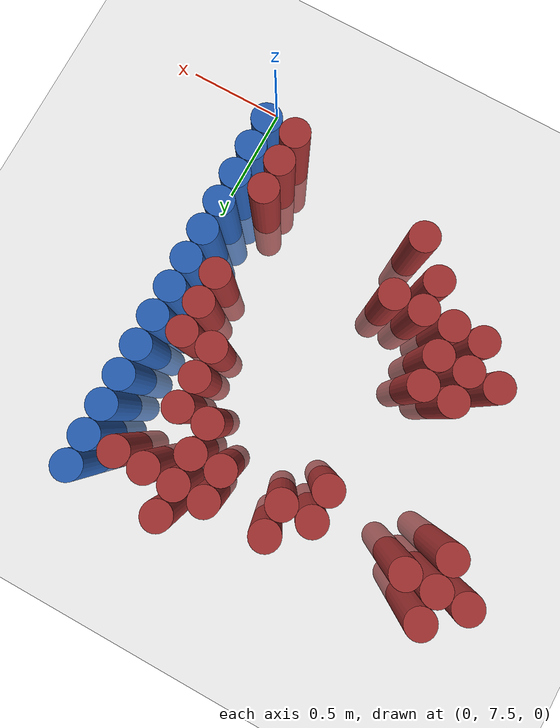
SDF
<sdf version="1.6">
 <world name="default">
  <model name="ground_plane">
   <static>1</static>
   <link name="link">
    <collision name="collision">
     <geometry><plane><normal>0 0 1</normal><size>100 100</size></plane></geometry>
     <surface><friction><ode><mu>100</mu><mu2>50</mu2></ode></friction></surface>
    </collision>
    <visual name="visual">
     <cast_shadows>0</cast_shadows>
     <geometry><plane><normal>0 0 1</normal><size>100 100</size></plane></geometry>
     <material>
      <script><uri>file://media/materials/scripts/gazebo.material</uri><name>Gazebo/Grey</name></script>
     </material>
    </visual>
   </link>
  </model>
  <model name="unit_cylinder_218">
   <static>1</static>
   <pose>-1.875000 9.225000 0.000000 0.000000 0.000000 0.000000</pose>
   <link name="link">
    <inertial>
     <mass>1</mass>
     <inertia><ixx>0.145833</ixx><ixy>0</ixy><ixz>0</ixz><iyy>0.145833</iyy><iyz>0</iyz><izz>0.125</izz></inertia>
    </inertial>
    <collision name="collision">
     <geometry><cylinder><radius>0.075000</radius><length>1</length></cylinder></geometry>
    </collision>
    <visual name="visual">
     <geometry><cylinder><radius>0.075000</radius><length>1</length></cylinder></geometry>
     <material>
      <ambient>0.648000 0.192000 0.192000 1</ambient>
      <diffuse>0.648000 0.192000 0.192000 1</diffuse>
     </material>
     <material>
      <script><name>Gazebo/Grey</name><uri>file://media/materials/scripts/gazebo.material</uri></script>
     </material>
    </visual>
   </link>
  </model>
  <model name="unit_cylinder_226">
   <static>1</static>
   <pose>-1.725000 9.075000 0.000000 0.000000 0.000000 0.000000</pose>
   <link name="link">
    <inertial>
     <mass>1</mass>
     <inertia><ixx>0.145833</ixx><ixy>0</ixy><ixz>0</ixz><iyy>0.145833</iyy><iyz>0</iyz><izz>0.125</izz></inertia>
    </inertial>
    <collision name="collision">
     <geometry><cylinder><radius>0.075000</radius><length>1</length></cylinder></geometry>
    </collision>
    <visual name="visual">
     <geometry><cylinder><radius>0.075000</radius><length>1</length></cylinder></geometry>
     <material>
      <ambient>0.648000 0.192000 0.192000 1</ambient>
      <diffuse>0.648000 0.192000 0.192000 1</diffuse>
     </material>
     <material>
      <script><name>Gazebo/Grey</name><uri>file://media/materials/scripts/gazebo.material</uri></script>
     </material>
    </visual>
   </link>
  </model>
  <model name="unit_cylinder_227">
   <static>1</static>
   <pose>-1.725000 9.225000 0.000000 0.000000 0.000000 0.000000</pose>
   <link name="link">
    <inertial>
     <mass>1</mass>
     <inertia><ixx>0.145833</ixx><ixy>0</ixy><ixz>0</ixz><iyy>0.145833</iyy><iyz>0</iyz><izz>0.125</izz></inertia>
    </inertial>
    <collision name="collision">
     <geometry><cylinder><radius>0.075000</radius><length>1</length></cylinder></geometry>
    </collision>
    <visual name="visual">
     <geometry><cylinder><radius>0.075000</radius><length>1</length></cylinder></geometry>
     <material>
      <ambient>0.648000 0.192000 0.192000 1</ambient>
      <diffuse>0.648000 0.192000 0.192000 1</diffuse>
     </material>
     <material>
      <script><name>Gazebo/Grey</name><uri>file://media/materials/scripts/gazebo.material</uri></script>
     </material>
    </visual>
   </link>
  </model>
  <model name="unit_cylinder_228">
   <static>1</static>
   <pose>-1.725000 9.375000 0.000000 0.000000 0.000000 0.000000</pose>
   <link name="link">
    <inertial>
     <mass>1</mass>
     <inertia><ixx>0.145833</ixx><ixy>0</ixy><ixz>0</ixz><iyy>0.145833</iyy><iyz>0</iyz><izz>0.125</izz></inertia>
    </inertial>
    <collision name="collision">
     <geometry><cylinder><radius>0.075000</radius><length>1</length></cylinder></geometry>
    </collision>
    <visual name="visual">
     <geometry><cylinder><radius>0.075000</radius><length>1</length></cylinder></geometry>
     <material>
      <ambient>0.648000 0.192000 0.192000 1</ambient>
      <diffuse>0.648000 0.192000 0.192000 1</diffuse>
     </material>
     <material>
      <script><name>Gazebo/Grey</name><uri>file://media/materials/scripts/gazebo.material</uri></script>
     </material>
    </visual>
   </link>
  </model>
  <model name="unit_cylinder_236">
   <static>1</static>
   <pose>-1.575000 8.325000 0.000000 0.000000 0.000000 0.000000</pose>
   <link name="link">
    <inertial>
     <mass>1</mass>
     <inertia><ixx>0.145833</ixx><ixy>0</ixy><ixz>0</ixz><iyy>0.145833</iyy><iyz>0</iyz><izz>0.125</izz></inertia>
    </inertial>
    <collision name="collision">
     <geometry><cylinder><radius>0.075000</radius><length>1</length></cylinder></geometry>
    </collision>
    <visual name="visual">
     <geometry><cylinder><radius>0.075000</radius><length>1</length></cylinder></geometry>
     <material>
      <ambient>0.648000 0.192000 0.192000 1</ambient>
      <diffuse>0.648000 0.192000 0.192000 1</diffuse>
     </material>
     <material>
      <script><name>Gazebo/Grey</name><uri>file://media/materials/scripts/gazebo.material</uri></script>
     </material>
    </visual>
   </link>
  </model>
  <model name="unit_cylinder_237">
   <static>1</static>
   <pose>-1.575000 9.225000 0.000000 0.000000 0.000000 0.000000</pose>
   <link name="link">
    <inertial>
     <mass>1</mass>
     <inertia><ixx>0.145833</ixx><ixy>0</ixy><ixz>0</ixz><iyy>0.145833</iyy><iyz>0</iyz><izz>0.125</izz></inertia>
    </inertial>
    <collision name="collision">
     <geometry><cylinder><radius>0.075000</radius><length>1</length></cylinder></geometry>
    </collision>
    <visual name="visual">
     <geometry><cylinder><radius>0.075000</radius><length>1</length></cylinder></geometry>
     <material>
      <ambient>0.648000 0.192000 0.192000 1</ambient>
      <diffuse>0.648000 0.192000 0.192000 1</diffuse>
     </material>
     <material>
      <script><name>Gazebo/Grey</name><uri>file://media/materials/scripts/gazebo.material</uri></script>
     </material>
    </visual>
   </link>
  </model>
  <model name="unit_cylinder_245">
   <static>1</static>
   <pose>-1.425000 8.175000 0.000000 0.000000 0.000000 0.000000</pose>
   <link name="link">
    <inertial>
     <mass>1</mass>
     <inertia><ixx>0.145833</ixx><ixy>0</ixy><ixz>0</ixz><iyy>0.145833</iyy><iyz>0</iyz><izz>0.125</izz></inertia>
    </inertial>
    <collision name="collision">
     <geometry><cylinder><radius>0.075000</radius><length>1</length></cylinder></geometry>
    </collision>
    <visual name="visual">
     <geometry><cylinder><radius>0.075000</radius><length>1</length></cylinder></geometry>
     <material>
      <ambient>0.648000 0.192000 0.192000 1</ambient>
      <diffuse>0.648000 0.192000 0.192000 1</diffuse>
     </material>
     <material>
      <script><name>Gazebo/Grey</name><uri>file://media/materials/scripts/gazebo.material</uri></script>
     </material>
    </visual>
   </link>
  </model>
  <model name="unit_cylinder_246">
   <static>1</static>
   <pose>-1.425000 8.325000 0.000000 0.000000 0.000000 0.000000</pose>
   <link name="link">
    <inertial>
     <mass>1</mass>
     <inertia><ixx>0.145833</ixx><ixy>0</ixy><ixz>0</ixz><iyy>0.145833</iyy><iyz>0</iyz><izz>0.125</izz></inertia>
    </inertial>
    <collision name="collision">
     <geometry><cylinder><radius>0.075000</radius><length>1</length></cylinder></geometry>
    </collision>
    <visual name="visual">
     <geometry><cylinder><radius>0.075000</radius><length>1</length></cylinder></geometry>
     <material>
      <ambient>0.648000 0.192000 0.192000 1</ambient>
      <diffuse>0.648000 0.192000 0.192000 1</diffuse>
     </material>
     <material>
      <script><name>Gazebo/Grey</name><uri>file://media/materials/scripts/gazebo.material</uri></script>
     </material>
    </visual>
   </link>
  </model>
  <model name="unit_cylinder_247">
   <static>1</static>
   <pose>-1.425000 8.475000 0.000000 0.000000 0.000000 0.000000</pose>
   <link name="link">
    <inertial>
     <mass>1</mass>
     <inertia><ixx>0.145833</ixx><ixy>0</ixy><ixz>0</ixz><iyy>0.145833</iyy><iyz>0</iyz><izz>0.125</izz></inertia>
    </inertial>
    <collision name="collision">
     <geometry><cylinder><radius>0.075000</radius><length>1</length></cylinder></geometry>
    </collision>
    <visual name="visual">
     <geometry><cylinder><radius>0.075000</radius><length>1</length></cylinder></geometry>
     <material>
      <ambient>0.648000 0.192000 0.192000 1</ambient>
      <diffuse>0.648000 0.192000 0.192000 1</diffuse>
     </material>
     <material>
      <script><name>Gazebo/Grey</name><uri>file://media/materials/scripts/gazebo.material</uri></script>
     </material>
    </visual>
   </link>
  </model>
  <model name="unit_cylinder_253">
   <static>1</static>
   <pose>-1.275000 8.175000 0.000000 0.000000 0.000000 0.000000</pose>
   <link name="link">
    <inertial>
     <mass>1</mass>
     <inertia><ixx>0.145833</ixx><ixy>0</ixy><ixz>0</ixz><iyy>0.145833</iyy><iyz>0</iyz><izz>0.125</izz></inertia>
    </inertial>
    <collision name="collision">
     <geometry><cylinder><radius>0.075000</radius><length>1</length></cylinder></geometry>
    </collision>
    <visual name="visual">
     <geometry><cylinder><radius>0.075000</radius><length>1</length></cylinder></geometry>
     <material>
      <ambient>0.648000 0.192000 0.192000 1</ambient>
      <diffuse>0.648000 0.192000 0.192000 1</diffuse>
     </material>
     <material>
      <script><name>Gazebo/Grey</name><uri>file://media/materials/scripts/gazebo.material</uri></script>
     </material>
    </visual>
   </link>
  </model>
  <model name="unit_cylinder_254">
   <static>1</static>
   <pose>-1.275000 8.325000 0.000000 0.000000 0.000000 0.000000</pose>
   <link name="link">
    <inertial>
     <mass>1</mass>
     <inertia><ixx>0.145833</ixx><ixy>0</ixy><ixz>0</ixz><iyy>0.145833</iyy><iyz>0</iyz><izz>0.125</izz></inertia>
    </inertial>
    <collision name="collision">
     <geometry><cylinder><radius>0.075000</radius><length>1</length></cylinder></geometry>
    </collision>
    <visual name="visual">
     <geometry><cylinder><radius>0.075000</radius><length>1</length></cylinder></geometry>
     <material>
      <ambient>0.648000 0.192000 0.192000 1</ambient>
      <diffuse>0.648000 0.192000 0.192000 1</diffuse>
     </material>
     <material>
      <script><name>Gazebo/Grey</name><uri>file://media/materials/scripts/gazebo.material</uri></script>
     </material>
    </visual>
   </link>
  </model>
  <model name="unit_cylinder_255">
   <static>1</static>
   <pose>-1.275000 8.475000 0.000000 0.000000 0.000000 0.000000</pose>
   <link name="link">
    <inertial>
     <mass>1</mass>
     <inertia><ixx>0.145833</ixx><ixy>0</ixy><ixz>0</ixz><iyy>0.145833</iyy><iyz>0</iyz><izz>0.125</izz></inertia>
    </inertial>
    <collision name="collision">
     <geometry><cylinder><radius>0.075000</radius><length>1</length></cylinder></geometry>
    </collision>
    <visual name="visual">
     <geometry><cylinder><radius>0.075000</radius><length>1</length></cylinder></geometry>
     <material>
      <ambient>0.648000 0.192000 0.192000 1</ambient>
      <diffuse>0.648000 0.192000 0.192000 1</diffuse>
     </material>
     <material>
      <script><name>Gazebo/Grey</name><uri>file://media/materials/scripts/gazebo.material</uri></script>
     </material>
    </visual>
   </link>
  </model>
  <model name="unit_cylinder_263">
   <static>1</static>
   <pose>-1.125000 8.025000 0.000000 0.000000 0.000000 0.000000</pose>
   <link name="link">
    <inertial>
     <mass>1</mass>
     <inertia><ixx>0.145833</ixx><ixy>0</ixy><ixz>0</ixz><iyy>0.145833</iyy><iyz>0</iyz><izz>0.125</izz></inertia>
    </inertial>
    <collision name="collision">
     <geometry><cylinder><radius>0.075000</radius><length>1</length></cylinder></geometry>
    </collision>
    <visual name="visual">
     <geometry><cylinder><radius>0.075000</radius><length>1</length></cylinder></geometry>
     <material>
      <ambient>0.648000 0.192000 0.192000 1</ambient>
      <diffuse>0.648000 0.192000 0.192000 1</diffuse>
     </material>
     <material>
      <script><name>Gazebo/Grey</name><uri>file://media/materials/scripts/gazebo.material</uri></script>
     </material>
    </visual>
   </link>
  </model>
  <model name="unit_cylinder_264">
   <static>1</static>
   <pose>-1.125000 8.175000 0.000000 0.000000 0.000000 0.000000</pose>
   <link name="link">
    <inertial>
     <mass>1</mass>
     <inertia><ixx>0.145833</ixx><ixy>0</ixy><ixz>0</ixz><iyy>0.145833</iyy><iyz>0</iyz><izz>0.125</izz></inertia>
    </inertial>
    <collision name="collision">
     <geometry><cylinder><radius>0.075000</radius><length>1</length></cylinder></geometry>
    </collision>
    <visual name="visual">
     <geometry><cylinder><radius>0.075000</radius><length>1</length></cylinder></geometry>
     <material>
      <ambient>0.648000 0.192000 0.192000 1</ambient>
      <diffuse>0.648000 0.192000 0.192000 1</diffuse>
     </material>
     <material>
      <script><name>Gazebo/Grey</name><uri>file://media/materials/scripts/gazebo.material</uri></script>
     </material>
    </visual>
   </link>
  </model>
  <model name="unit_cylinder_265">
   <static>1</static>
   <pose>-1.125000 9.075000 0.000000 0.000000 0.000000 0.000000</pose>
   <link name="link">
    <inertial>
     <mass>1</mass>
     <inertia><ixx>0.145833</ixx><ixy>0</ixy><ixz>0</ixz><iyy>0.145833</iyy><iyz>0</iyz><izz>0.125</izz></inertia>
    </inertial>
    <collision name="collision">
     <geometry><cylinder><radius>0.075000</radius><length>1</length></cylinder></geometry>
    </collision>
    <visual name="visual">
     <geometry><cylinder><radius>0.075000</radius><length>1</length></cylinder></geometry>
     <material>
      <ambient>0.648000 0.192000 0.192000 1</ambient>
      <diffuse>0.648000 0.192000 0.192000 1</diffuse>
     </material>
     <material>
      <script><name>Gazebo/Grey</name><uri>file://media/materials/scripts/gazebo.material</uri></script>
     </material>
    </visual>
   </link>
  </model>
  <model name="unit_cylinder_266">
   <static>1</static>
   <pose>-1.125000 9.225000 0.000000 0.000000 0.000000 0.000000</pose>
   <link name="link">
    <inertial>
     <mass>1</mass>
     <inertia><ixx>0.145833</ixx><ixy>0</ixy><ixz>0</ixz><iyy>0.145833</iyy><iyz>0</iyz><izz>0.125</izz></inertia>
    </inertial>
    <collision name="collision">
     <geometry><cylinder><radius>0.075000</radius><length>1</length></cylinder></geometry>
    </collision>
    <visual name="visual">
     <geometry><cylinder><radius>0.075000</radius><length>1</length></cylinder></geometry>
     <material>
      <ambient>0.648000 0.192000 0.192000 1</ambient>
      <diffuse>0.648000 0.192000 0.192000 1</diffuse>
     </material>
     <material>
      <script><name>Gazebo/Grey</name><uri>file://media/materials/scripts/gazebo.material</uri></script>
     </material>
    </visual>
   </link>
  </model>
  <model name="unit_cylinder_270">
   <static>1</static>
   <pose>-0.975000 7.875000 0.000000 0.000000 0.000000 0.000000</pose>
   <link name="link">
    <inertial>
     <mass>1</mass>
     <inertia><ixx>0.145833</ixx><ixy>0</ixy><ixz>0</ixz><iyy>0.145833</iyy><iyz>0</iyz><izz>0.125</izz></inertia>
    </inertial>
    <collision name="collision">
     <geometry><cylinder><radius>0.075000</radius><length>1</length></cylinder></geometry>
    </collision>
    <visual name="visual">
     <geometry><cylinder><radius>0.075000</radius><length>1</length></cylinder></geometry>
     <material>
      <ambient>0.648000 0.192000 0.192000 1</ambient>
      <diffuse>0.648000 0.192000 0.192000 1</diffuse>
     </material>
     <material>
      <script><name>Gazebo/Grey</name><uri>file://media/materials/scripts/gazebo.material</uri></script>
     </material>
    </visual>
   </link>
  </model>
  <model name="unit_cylinder_271">
   <static>1</static>
   <pose>-0.975000 8.175000 0.000000 0.000000 0.000000 0.000000</pose>
   <link name="link">
    <inertial>
     <mass>1</mass>
     <inertia><ixx>0.145833</ixx><ixy>0</ixy><ixz>0</ixz><iyy>0.145833</iyy><iyz>0</iyz><izz>0.125</izz></inertia>
    </inertial>
    <collision name="collision">
     <geometry><cylinder><radius>0.075000</radius><length>1</length></cylinder></geometry>
    </collision>
    <visual name="visual">
     <geometry><cylinder><radius>0.075000</radius><length>1</length></cylinder></geometry>
     <material>
      <ambient>0.648000 0.192000 0.192000 1</ambient>
      <diffuse>0.648000 0.192000 0.192000 1</diffuse>
     </material>
     <material>
      <script><name>Gazebo/Grey</name><uri>file://media/materials/scripts/gazebo.material</uri></script>
     </material>
    </visual>
   </link>
  </model>
  <model name="unit_cylinder_272">
   <static>1</static>
   <pose>-0.975000 9.225000 0.000000 0.000000 0.000000 0.000000</pose>
   <link name="link">
    <inertial>
     <mass>1</mass>
     <inertia><ixx>0.145833</ixx><ixy>0</ixy><ixz>0</ixz><iyy>0.145833</iyy><iyz>0</iyz><izz>0.125</izz></inertia>
    </inertial>
    <collision name="collision">
     <geometry><cylinder><radius>0.075000</radius><length>1</length></cylinder></geometry>
    </collision>
    <visual name="visual">
     <geometry><cylinder><radius>0.075000</radius><length>1</length></cylinder></geometry>
     <material>
      <ambient>0.648000 0.192000 0.192000 1</ambient>
      <diffuse>0.648000 0.192000 0.192000 1</diffuse>
     </material>
     <material>
      <script><name>Gazebo/Grey</name><uri>file://media/materials/scripts/gazebo.material</uri></script>
     </material>
    </visual>
   </link>
  </model>
  <model name="unit_cylinder_273">
   <static>1</static>
   <pose>-0.975000 9.375000 0.000000 0.000000 0.000000 0.000000</pose>
   <link name="link">
    <inertial>
     <mass>1</mass>
     <inertia><ixx>0.145833</ixx><ixy>0</ixy><ixz>0</ixz><iyy>0.145833</iyy><iyz>0</iyz><izz>0.125</izz></inertia>
    </inertial>
    <collision name="collision">
     <geometry><cylinder><radius>0.075000</radius><length>1</length></cylinder></geometry>
    </collision>
    <visual name="visual">
     <geometry><cylinder><radius>0.075000</radius><length>1</length></cylinder></geometry>
     <material>
      <ambient>0.648000 0.192000 0.192000 1</ambient>
      <diffuse>0.648000 0.192000 0.192000 1</diffuse>
     </material>
     <material>
      <script><name>Gazebo/Grey</name><uri>file://media/materials/scripts/gazebo.material</uri></script>
     </material>
    </visual>
   </link>
  </model>
  <model name="unit_cylinder_289">
   <static>1</static>
   <pose>-0.675000 9.225000 0.000000 0.000000 0.000000 0.000000</pose>
   <link name="link">
    <inertial>
     <mass>1</mass>
     <inertia><ixx>0.145833</ixx><ixy>0</ixy><ixz>0</ixz><iyy>0.145833</iyy><iyz>0</iyz><izz>0.125</izz></inertia>
    </inertial>
    <collision name="collision">
     <geometry><cylinder><radius>0.075000</radius><length>1</length></cylinder></geometry>
    </collision>
    <visual name="visual">
     <geometry><cylinder><radius>0.075000</radius><length>1</length></cylinder></geometry>
     <material>
      <ambient>0.648000 0.192000 0.192000 1</ambient>
      <diffuse>0.648000 0.192000 0.192000 1</diffuse>
     </material>
     <material>
      <script><name>Gazebo/Grey</name><uri>file://media/materials/scripts/gazebo.material</uri></script>
     </material>
    </visual>
   </link>
  </model>
  <model name="unit_cylinder_290">
   <static>1</static>
   <pose>-0.675000 9.375000 0.000000 0.000000 0.000000 0.000000</pose>
   <link name="link">
    <inertial>
     <mass>1</mass>
     <inertia><ixx>0.145833</ixx><ixy>0</ixy><ixz>0</ixz><iyy>0.145833</iyy><iyz>0</iyz><izz>0.125</izz></inertia>
    </inertial>
    <collision name="collision">
     <geometry><cylinder><radius>0.075000</radius><length>1</length></cylinder></geometry>
    </collision>
    <visual name="visual">
     <geometry><cylinder><radius>0.075000</radius><length>1</length></cylinder></geometry>
     <material>
      <ambient>0.648000 0.192000 0.192000 1</ambient>
      <diffuse>0.648000 0.192000 0.192000 1</diffuse>
     </material>
     <material>
      <script><name>Gazebo/Grey</name><uri>file://media/materials/scripts/gazebo.material</uri></script>
     </material>
    </visual>
   </link>
  </model>
  <model name="unit_cylinder_295">
   <static>1</static>
   <pose>-0.525000 9.075000 0.000000 0.000000 0.000000 0.000000</pose>
   <link name="link">
    <inertial>
     <mass>1</mass>
     <inertia><ixx>0.145833</ixx><ixy>0</ixy><ixz>0</ixz><iyy>0.145833</iyy><iyz>0</iyz><izz>0.125</izz></inertia>
    </inertial>
    <collision name="collision">
     <geometry><cylinder><radius>0.075000</radius><length>1</length></cylinder></geometry>
    </collision>
    <visual name="visual">
     <geometry><cylinder><radius>0.075000</radius><length>1</length></cylinder></geometry>
     <material>
      <ambient>0.648000 0.192000 0.192000 1</ambient>
      <diffuse>0.648000 0.192000 0.192000 1</diffuse>
     </material>
     <material>
      <script><name>Gazebo/Grey</name><uri>file://media/materials/scripts/gazebo.material</uri></script>
     </material>
    </visual>
   </link>
  </model>
  <model name="unit_cylinder_296">
   <static>1</static>
   <pose>-0.525000 9.225000 0.000000 0.000000 0.000000 0.000000</pose>
   <link name="link">
    <inertial>
     <mass>1</mass>
     <inertia><ixx>0.145833</ixx><ixy>0</ixy><ixz>0</ixz><iyy>0.145833</iyy><iyz>0</iyz><izz>0.125</izz></inertia>
    </inertial>
    <collision name="collision">
     <geometry><cylinder><radius>0.075000</radius><length>1</length></cylinder></geometry>
    </collision>
    <visual name="visual">
     <geometry><cylinder><radius>0.075000</radius><length>1</length></cylinder></geometry>
     <material>
      <ambient>0.648000 0.192000 0.192000 1</ambient>
      <diffuse>0.648000 0.192000 0.192000 1</diffuse>
     </material>
     <material>
      <script><name>Gazebo/Grey</name><uri>file://media/materials/scripts/gazebo.material</uri></script>
     </material>
    </visual>
   </link>
  </model>
  <model name="unit_cylinder_297">
   <static>1</static>
   <pose>-0.525000 9.375000 0.000000 0.000000 0.000000 0.000000</pose>
   <link name="link">
    <inertial>
     <mass>1</mass>
     <inertia><ixx>0.145833</ixx><ixy>0</ixy><ixz>0</ixz><iyy>0.145833</iyy><iyz>0</iyz><izz>0.125</izz></inertia>
    </inertial>
    <collision name="collision">
     <geometry><cylinder><radius>0.075000</radius><length>1</length></cylinder></geometry>
    </collision>
    <visual name="visual">
     <geometry><cylinder><radius>0.075000</radius><length>1</length></cylinder></geometry>
     <material>
      <ambient>0.648000 0.192000 0.192000 1</ambient>
      <diffuse>0.648000 0.192000 0.192000 1</diffuse>
     </material>
     <material>
      <script><name>Gazebo/Grey</name><uri>file://media/materials/scripts/gazebo.material</uri></script>
     </material>
    </visual>
   </link>
  </model>
  <model name="unit_cylinder_298">
   <static>1</static>
   <pose>-0.525000 9.525000 0.000000 0.000000 0.000000 0.000000</pose>
   <link name="link">
    <inertial>
     <mass>1</mass>
     <inertia><ixx>0.145833</ixx><ixy>0</ixy><ixz>0</ixz><iyy>0.145833</iyy><iyz>0</iyz><izz>0.125</izz></inertia>
    </inertial>
    <collision name="collision">
     <geometry><cylinder><radius>0.075000</radius><length>1</length></cylinder></geometry>
    </collision>
    <visual name="visual">
     <geometry><cylinder><radius>0.075000</radius><length>1</length></cylinder></geometry>
     <material>
      <ambient>0.648000 0.192000 0.192000 1</ambient>
      <diffuse>0.648000 0.192000 0.192000 1</diffuse>
     </material>
     <material>
      <script><name>Gazebo/Grey</name><uri>file://media/materials/scripts/gazebo.material</uri></script>
     </material>
    </visual>
   </link>
  </model>
  <model name="unit_cylinder_306">
   <static>1</static>
   <pose>-0.375000 8.775000 0.000000 0.000000 0.000000 0.000000</pose>
   <link name="link">
    <inertial>
     <mass>1</mass>
     <inertia><ixx>0.145833</ixx><ixy>0</ixy><ixz>0</ixz><iyy>0.145833</iyy><iyz>0</iyz><izz>0.125</izz></inertia>
    </inertial>
    <collision name="collision">
     <geometry><cylinder><radius>0.075000</radius><length>1</length></cylinder></geometry>
    </collision>
    <visual name="visual">
     <geometry><cylinder><radius>0.075000</radius><length>1</length></cylinder></geometry>
     <material>
      <ambient>0.648000 0.192000 0.192000 1</ambient>
      <diffuse>0.648000 0.192000 0.192000 1</diffuse>
     </material>
     <material>
      <script><name>Gazebo/Grey</name><uri>file://media/materials/scripts/gazebo.material</uri></script>
     </material>
    </visual>
   </link>
  </model>
  <model name="unit_cylinder_307">
   <static>1</static>
   <pose>-0.375000 8.925000 0.000000 0.000000 0.000000 0.000000</pose>
   <link name="link">
    <inertial>
     <mass>1</mass>
     <inertia><ixx>0.145833</ixx><ixy>0</ixy><ixz>0</ixz><iyy>0.145833</iyy><iyz>0</iyz><izz>0.125</izz></inertia>
    </inertial>
    <collision name="collision">
     <geometry><cylinder><radius>0.075000</radius><length>1</length></cylinder></geometry>
    </collision>
    <visual name="visual">
     <geometry><cylinder><radius>0.075000</radius><length>1</length></cylinder></geometry>
     <material>
      <ambient>0.648000 0.192000 0.192000 1</ambient>
      <diffuse>0.648000 0.192000 0.192000 1</diffuse>
     </material>
     <material>
      <script><name>Gazebo/Grey</name><uri>file://media/materials/scripts/gazebo.material</uri></script>
     </material>
    </visual>
   </link>
  </model>
  <model name="unit_cylinder_308">
   <static>1</static>
   <pose>-0.375000 9.075000 0.000000 0.000000 0.000000 0.000000</pose>
   <link name="link">
    <inertial>
     <mass>1</mass>
     <inertia><ixx>0.145833</ixx><ixy>0</ixy><ixz>0</ixz><iyy>0.145833</iyy><iyz>0</iyz><izz>0.125</izz></inertia>
    </inertial>
    <collision name="collision">
     <geometry><cylinder><radius>0.075000</radius><length>1</length></cylinder></geometry>
    </collision>
    <visual name="visual">
     <geometry><cylinder><radius>0.075000</radius><length>1</length></cylinder></geometry>
     <material>
      <ambient>0.648000 0.192000 0.192000 1</ambient>
      <diffuse>0.648000 0.192000 0.192000 1</diffuse>
     </material>
     <material>
      <script><name>Gazebo/Grey</name><uri>file://media/materials/scripts/gazebo.material</uri></script>
     </material>
    </visual>
   </link>
  </model>
  <model name="unit_cylinder_309">
   <static>1</static>
   <pose>-0.375000 9.375000 0.000000 0.000000 0.000000 0.000000</pose>
   <link name="link">
    <inertial>
     <mass>1</mass>
     <inertia><ixx>0.145833</ixx><ixy>0</ixy><ixz>0</ixz><iyy>0.145833</iyy><iyz>0</iyz><izz>0.125</izz></inertia>
    </inertial>
    <collision name="collision">
     <geometry><cylinder><radius>0.075000</radius><length>1</length></cylinder></geometry>
    </collision>
    <visual name="visual">
     <geometry><cylinder><radius>0.075000</radius><length>1</length></cylinder></geometry>
     <material>
      <ambient>0.648000 0.192000 0.192000 1</ambient>
      <diffuse>0.648000 0.192000 0.192000 1</diffuse>
     </material>
     <material>
      <script><name>Gazebo/Grey</name><uri>file://media/materials/scripts/gazebo.material</uri></script>
     </material>
    </visual>
   </link>
  </model>
  <model name="unit_cylinder_314">
   <static>1</static>
   <pose>-0.225000 7.725000 0.000000 0.000000 0.000000 0.000000</pose>
   <link name="link">
    <inertial>
     <mass>1</mass>
     <inertia><ixx>0.145833</ixx><ixy>0</ixy><ixz>0</ixz><iyy>0.145833</iyy><iyz>0</iyz><izz>0.125</izz></inertia>
    </inertial>
    <collision name="collision">
     <geometry><cylinder><radius>0.075000</radius><length>1</length></cylinder></geometry>
    </collision>
    <visual name="visual">
     <geometry><cylinder><radius>0.075000</radius><length>1</length></cylinder></geometry>
     <material>
      <ambient>0.648000 0.192000 0.192000 1</ambient>
      <diffuse>0.648000 0.192000 0.192000 1</diffuse>
     </material>
     <material>
      <script><name>Gazebo/Grey</name><uri>file://media/materials/scripts/gazebo.material</uri></script>
     </material>
    </visual>
   </link>
  </model>
  <model name="unit_cylinder_315">
   <static>1</static>
   <pose>-0.225000 7.875000 0.000000 0.000000 0.000000 0.000000</pose>
   <link name="link">
    <inertial>
     <mass>1</mass>
     <inertia><ixx>0.145833</ixx><ixy>0</ixy><ixz>0</ixz><iyy>0.145833</iyy><iyz>0</iyz><izz>0.125</izz></inertia>
    </inertial>
    <collision name="collision">
     <geometry><cylinder><radius>0.075000</radius><length>1</length></cylinder></geometry>
    </collision>
    <visual name="visual">
     <geometry><cylinder><radius>0.075000</radius><length>1</length></cylinder></geometry>
     <material>
      <ambient>0.648000 0.192000 0.192000 1</ambient>
      <diffuse>0.648000 0.192000 0.192000 1</diffuse>
     </material>
     <material>
      <script><name>Gazebo/Grey</name><uri>file://media/materials/scripts/gazebo.material</uri></script>
     </material>
    </visual>
   </link>
  </model>
  <model name="unit_cylinder_316">
   <static>1</static>
   <pose>-0.225000 8.025000 0.000000 0.000000 0.000000 0.000000</pose>
   <link name="link">
    <inertial>
     <mass>1</mass>
     <inertia><ixx>0.145833</ixx><ixy>0</ixy><ixz>0</ixz><iyy>0.145833</iyy><iyz>0</iyz><izz>0.125</izz></inertia>
    </inertial>
    <collision name="collision">
     <geometry><cylinder><radius>0.075000</radius><length>1</length></cylinder></geometry>
    </collision>
    <visual name="visual">
     <geometry><cylinder><radius>0.075000</radius><length>1</length></cylinder></geometry>
     <material>
      <ambient>0.648000 0.192000 0.192000 1</ambient>
      <diffuse>0.648000 0.192000 0.192000 1</diffuse>
     </material>
     <material>
      <script><name>Gazebo/Grey</name><uri>file://media/materials/scripts/gazebo.material</uri></script>
     </material>
    </visual>
   </link>
  </model>
  <model name="unit_cylinder_317">
   <static>1</static>
   <pose>-0.225000 8.475000 0.000000 0.000000 0.000000 0.000000</pose>
   <link name="link">
    <inertial>
     <mass>1</mass>
     <inertia><ixx>0.145833</ixx><ixy>0</ixy><ixz>0</ixz><iyy>0.145833</iyy><iyz>0</iyz><izz>0.125</izz></inertia>
    </inertial>
    <collision name="collision">
     <geometry><cylinder><radius>0.075000</radius><length>1</length></cylinder></geometry>
    </collision>
    <visual name="visual">
     <geometry><cylinder><radius>0.075000</radius><length>1</length></cylinder></geometry>
     <material>
      <ambient>0.648000 0.192000 0.192000 1</ambient>
      <diffuse>0.648000 0.192000 0.192000 1</diffuse>
     </material>
     <material>
      <script><name>Gazebo/Grey</name><uri>file://media/materials/scripts/gazebo.material</uri></script>
     </material>
    </visual>
   </link>
  </model>
  <model name="unit_cylinder_318">
   <static>1</static>
   <pose>-0.225000 8.625000 0.000000 0.000000 0.000000 0.000000</pose>
   <link name="link">
    <inertial>
     <mass>1</mass>
     <inertia><ixx>0.145833</ixx><ixy>0</ixy><ixz>0</ixz><iyy>0.145833</iyy><iyz>0</iyz><izz>0.125</izz></inertia>
    </inertial>
    <collision name="collision">
     <geometry><cylinder><radius>0.075000</radius><length>1</length></cylinder></geometry>
    </collision>
    <visual name="visual">
     <geometry><cylinder><radius>0.075000</radius><length>1</length></cylinder></geometry>
     <material>
      <ambient>0.648000 0.192000 0.192000 1</ambient>
      <diffuse>0.648000 0.192000 0.192000 1</diffuse>
     </material>
     <material>
      <script><name>Gazebo/Grey</name><uri>file://media/materials/scripts/gazebo.material</uri></script>
     </material>
    </visual>
   </link>
  </model>
  <model name="unit_cylinder_319">
   <static>1</static>
   <pose>-0.225000 8.775000 0.000000 0.000000 0.000000 0.000000</pose>
   <link name="link">
    <inertial>
     <mass>1</mass>
     <inertia><ixx>0.145833</ixx><ixy>0</ixy><ixz>0</ixz><iyy>0.145833</iyy><iyz>0</iyz><izz>0.125</izz></inertia>
    </inertial>
    <collision name="collision">
     <geometry><cylinder><radius>0.075000</radius><length>1</length></cylinder></geometry>
    </collision>
    <visual name="visual">
     <geometry><cylinder><radius>0.075000</radius><length>1</length></cylinder></geometry>
     <material>
      <ambient>0.648000 0.192000 0.192000 1</ambient>
      <diffuse>0.648000 0.192000 0.192000 1</diffuse>
     </material>
     <material>
      <script><name>Gazebo/Grey</name><uri>file://media/materials/scripts/gazebo.material</uri></script>
     </material>
    </visual>
   </link>
  </model>
  <model name="unit_cylinder_320">
   <static>1</static>
   <pose>-0.225000 9.375000 0.000000 0.000000 0.000000 0.000000</pose>
   <link name="link">
    <inertial>
     <mass>1</mass>
     <inertia><ixx>0.145833</ixx><ixy>0</ixy><ixz>0</ixz><iyy>0.145833</iyy><iyz>0</iyz><izz>0.125</izz></inertia>
    </inertial>
    <collision name="collision">
     <geometry><cylinder><radius>0.075000</radius><length>1</length></cylinder></geometry>
    </collision>
    <visual name="visual">
     <geometry><cylinder><radius>0.075000</radius><length>1</length></cylinder></geometry>
     <material>
      <ambient>0.648000 0.192000 0.192000 1</ambient>
      <diffuse>0.648000 0.192000 0.192000 1</diffuse>
     </material>
     <material>
      <script><name>Gazebo/Grey</name><uri>file://media/materials/scripts/gazebo.material</uri></script>
     </material>
    </visual>
   </link>
  </model>
  <model name="unit_cylinder_338">
   <static>1</static>
   <pose>-0.075000 7.725000 0.000000 0.000000 0.000000 0.000000</pose>
   <link name="link">
    <inertial>
     <mass>1</mass>
     <inertia><ixx>0.145833</ixx><ixy>0</ixy><ixz>0</ixz><iyy>0.145833</iyy><iyz>0</iyz><izz>0.125</izz></inertia>
    </inertial>
    <collision name="collision">
     <geometry><cylinder><radius>0.075000</radius><length>1</length></cylinder></geometry>
    </collision>
    <visual name="visual">
     <geometry><cylinder><radius>0.075000</radius><length>1</length></cylinder></geometry>
     <material>
      <ambient>0.152000 0.379000 0.720000 1</ambient>
      <diffuse>0.152000 0.379000 0.720000 1</diffuse>
     </material>
     <material>
      <script><name>Gazebo/Grey</name><uri>file://media/materials/scripts/gazebo.material</uri></script>
     </material>
    </visual>
   </link>
  </model>
  <model name="unit_cylinder_339">
   <static>1</static>
   <pose>-0.075000 7.875000 0.000000 0.000000 0.000000 0.000000</pose>
   <link name="link">
    <inertial>
     <mass>1</mass>
     <inertia><ixx>0.145833</ixx><ixy>0</ixy><ixz>0</ixz><iyy>0.145833</iyy><iyz>0</iyz><izz>0.125</izz></inertia>
    </inertial>
    <collision name="collision">
     <geometry><cylinder><radius>0.075000</radius><length>1</length></cylinder></geometry>
    </collision>
    <visual name="visual">
     <geometry><cylinder><radius>0.075000</radius><length>1</length></cylinder></geometry>
     <material>
      <ambient>0.152000 0.379000 0.720000 1</ambient>
      <diffuse>0.152000 0.379000 0.720000 1</diffuse>
     </material>
     <material>
      <script><name>Gazebo/Grey</name><uri>file://media/materials/scripts/gazebo.material</uri></script>
     </material>
    </visual>
   </link>
  </model>
  <model name="unit_cylinder_340">
   <static>1</static>
   <pose>-0.075000 8.025000 0.000000 0.000000 0.000000 0.000000</pose>
   <link name="link">
    <inertial>
     <mass>1</mass>
     <inertia><ixx>0.145833</ixx><ixy>0</ixy><ixz>0</ixz><iyy>0.145833</iyy><iyz>0</iyz><izz>0.125</izz></inertia>
    </inertial>
    <collision name="collision">
     <geometry><cylinder><radius>0.075000</radius><length>1</length></cylinder></geometry>
    </collision>
    <visual name="visual">
     <geometry><cylinder><radius>0.075000</radius><length>1</length></cylinder></geometry>
     <material>
      <ambient>0.152000 0.379000 0.720000 1</ambient>
      <diffuse>0.152000 0.379000 0.720000 1</diffuse>
     </material>
     <material>
      <script><name>Gazebo/Grey</name><uri>file://media/materials/scripts/gazebo.material</uri></script>
     </material>
    </visual>
   </link>
  </model>
  <model name="unit_cylinder_341">
   <static>1</static>
   <pose>-0.075000 8.175000 0.000000 0.000000 0.000000 0.000000</pose>
   <link name="link">
    <inertial>
     <mass>1</mass>
     <inertia><ixx>0.145833</ixx><ixy>0</ixy><ixz>0</ixz><iyy>0.145833</iyy><iyz>0</iyz><izz>0.125</izz></inertia>
    </inertial>
    <collision name="collision">
     <geometry><cylinder><radius>0.075000</radius><length>1</length></cylinder></geometry>
    </collision>
    <visual name="visual">
     <geometry><cylinder><radius>0.075000</radius><length>1</length></cylinder></geometry>
     <material>
      <ambient>0.152000 0.379000 0.720000 1</ambient>
      <diffuse>0.152000 0.379000 0.720000 1</diffuse>
     </material>
     <material>
      <script><name>Gazebo/Grey</name><uri>file://media/materials/scripts/gazebo.material</uri></script>
     </material>
    </visual>
   </link>
  </model>
  <model name="unit_cylinder_342">
   <static>1</static>
   <pose>-0.075000 8.325000 0.000000 0.000000 0.000000 0.000000</pose>
   <link name="link">
    <inertial>
     <mass>1</mass>
     <inertia><ixx>0.145833</ixx><ixy>0</ixy><ixz>0</ixz><iyy>0.145833</iyy><iyz>0</iyz><izz>0.125</izz></inertia>
    </inertial>
    <collision name="collision">
     <geometry><cylinder><radius>0.075000</radius><length>1</length></cylinder></geometry>
    </collision>
    <visual name="visual">
     <geometry><cylinder><radius>0.075000</radius><length>1</length></cylinder></geometry>
     <material>
      <ambient>0.152000 0.379000 0.720000 1</ambient>
      <diffuse>0.152000 0.379000 0.720000 1</diffuse>
     </material>
     <material>
      <script><name>Gazebo/Grey</name><uri>file://media/materials/scripts/gazebo.material</uri></script>
     </material>
    </visual>
   </link>
  </model>
  <model name="unit_cylinder_343">
   <static>1</static>
   <pose>-0.075000 8.475000 0.000000 0.000000 0.000000 0.000000</pose>
   <link name="link">
    <inertial>
     <mass>1</mass>
     <inertia><ixx>0.145833</ixx><ixy>0</ixy><ixz>0</ixz><iyy>0.145833</iyy><iyz>0</iyz><izz>0.125</izz></inertia>
    </inertial>
    <collision name="collision">
     <geometry><cylinder><radius>0.075000</radius><length>1</length></cylinder></geometry>
    </collision>
    <visual name="visual">
     <geometry><cylinder><radius>0.075000</radius><length>1</length></cylinder></geometry>
     <material>
      <ambient>0.152000 0.379000 0.720000 1</ambient>
      <diffuse>0.152000 0.379000 0.720000 1</diffuse>
     </material>
     <material>
      <script><name>Gazebo/Grey</name><uri>file://media/materials/scripts/gazebo.material</uri></script>
     </material>
    </visual>
   </link>
  </model>
  <model name="unit_cylinder_344">
   <static>1</static>
   <pose>-0.075000 8.625000 0.000000 0.000000 0.000000 0.000000</pose>
   <link name="link">
    <inertial>
     <mass>1</mass>
     <inertia><ixx>0.145833</ixx><ixy>0</ixy><ixz>0</ixz><iyy>0.145833</iyy><iyz>0</iyz><izz>0.125</izz></inertia>
    </inertial>
    <collision name="collision">
     <geometry><cylinder><radius>0.075000</radius><length>1</length></cylinder></geometry>
    </collision>
    <visual name="visual">
     <geometry><cylinder><radius>0.075000</radius><length>1</length></cylinder></geometry>
     <material>
      <ambient>0.152000 0.379000 0.720000 1</ambient>
      <diffuse>0.152000 0.379000 0.720000 1</diffuse>
     </material>
     <material>
      <script><name>Gazebo/Grey</name><uri>file://media/materials/scripts/gazebo.material</uri></script>
     </material>
    </visual>
   </link>
  </model>
  <model name="unit_cylinder_345">
   <static>1</static>
   <pose>-0.075000 8.775000 0.000000 0.000000 0.000000 0.000000</pose>
   <link name="link">
    <inertial>
     <mass>1</mass>
     <inertia><ixx>0.145833</ixx><ixy>0</ixy><ixz>0</ixz><iyy>0.145833</iyy><iyz>0</iyz><izz>0.125</izz></inertia>
    </inertial>
    <collision name="collision">
     <geometry><cylinder><radius>0.075000</radius><length>1</length></cylinder></geometry>
    </collision>
    <visual name="visual">
     <geometry><cylinder><radius>0.075000</radius><length>1</length></cylinder></geometry>
     <material>
      <ambient>0.152000 0.379000 0.720000 1</ambient>
      <diffuse>0.152000 0.379000 0.720000 1</diffuse>
     </material>
     <material>
      <script><name>Gazebo/Grey</name><uri>file://media/materials/scripts/gazebo.material</uri></script>
     </material>
    </visual>
   </link>
  </model>
  <model name="unit_cylinder_346">
   <static>1</static>
   <pose>-0.075000 8.925000 0.000000 0.000000 0.000000 0.000000</pose>
   <link name="link">
    <inertial>
     <mass>1</mass>
     <inertia><ixx>0.145833</ixx><ixy>0</ixy><ixz>0</ixz><iyy>0.145833</iyy><iyz>0</iyz><izz>0.125</izz></inertia>
    </inertial>
    <collision name="collision">
     <geometry><cylinder><radius>0.075000</radius><length>1</length></cylinder></geometry>
    </collision>
    <visual name="visual">
     <geometry><cylinder><radius>0.075000</radius><length>1</length></cylinder></geometry>
     <material>
      <ambient>0.152000 0.379000 0.720000 1</ambient>
      <diffuse>0.152000 0.379000 0.720000 1</diffuse>
     </material>
     <material>
      <script><name>Gazebo/Grey</name><uri>file://media/materials/scripts/gazebo.material</uri></script>
     </material>
    </visual>
   </link>
  </model>
  <model name="unit_cylinder_347">
   <static>1</static>
   <pose>-0.075000 9.075000 0.000000 0.000000 0.000000 0.000000</pose>
   <link name="link">
    <inertial>
     <mass>1</mass>
     <inertia><ixx>0.145833</ixx><ixy>0</ixy><ixz>0</ixz><iyy>0.145833</iyy><iyz>0</iyz><izz>0.125</izz></inertia>
    </inertial>
    <collision name="collision">
     <geometry><cylinder><radius>0.075000</radius><length>1</length></cylinder></geometry>
    </collision>
    <visual name="visual">
     <geometry><cylinder><radius>0.075000</radius><length>1</length></cylinder></geometry>
     <material>
      <ambient>0.152000 0.379000 0.720000 1</ambient>
      <diffuse>0.152000 0.379000 0.720000 1</diffuse>
     </material>
     <material>
      <script><name>Gazebo/Grey</name><uri>file://media/materials/scripts/gazebo.material</uri></script>
     </material>
    </visual>
   </link>
  </model>
  <model name="unit_cylinder_348">
   <static>1</static>
   <pose>-0.075000 9.225000 0.000000 0.000000 0.000000 0.000000</pose>
   <link name="link">
    <inertial>
     <mass>1</mass>
     <inertia><ixx>0.145833</ixx><ixy>0</ixy><ixz>0</ixz><iyy>0.145833</iyy><iyz>0</iyz><izz>0.125</izz></inertia>
    </inertial>
    <collision name="collision">
     <geometry><cylinder><radius>0.075000</radius><length>1</length></cylinder></geometry>
    </collision>
    <visual name="visual">
     <geometry><cylinder><radius>0.075000</radius><length>1</length></cylinder></geometry>
     <material>
      <ambient>0.152000 0.379000 0.720000 1</ambient>
      <diffuse>0.152000 0.379000 0.720000 1</diffuse>
     </material>
     <material>
      <script><name>Gazebo/Grey</name><uri>file://media/materials/scripts/gazebo.material</uri></script>
     </material>
    </visual>
   </link>
  </model>
  <model name="unit_cylinder_349">
   <static>1</static>
   <pose>-0.075000 9.375000 0.000000 0.000000 0.000000 0.000000</pose>
   <link name="link">
    <inertial>
     <mass>1</mass>
     <inertia><ixx>0.145833</ixx><ixy>0</ixy><ixz>0</ixz><iyy>0.145833</iyy><iyz>0</iyz><izz>0.125</izz></inertia>
    </inertial>
    <collision name="collision">
     <geometry><cylinder><radius>0.075000</radius><length>1</length></cylinder></geometry>
    </collision>
    <visual name="visual">
     <geometry><cylinder><radius>0.075000</radius><length>1</length></cylinder></geometry>
     <material>
      <ambient>0.152000 0.379000 0.720000 1</ambient>
      <diffuse>0.152000 0.379000 0.720000 1</diffuse>
     </material>
     <material>
      <script><name>Gazebo/Grey</name><uri>file://media/materials/scripts/gazebo.material</uri></script>
     </material>
    </visual>
   </link>
  </model>
  <model name="unit_cylinder_350">
   <static>1</static>
   <pose>-0.075000 9.525000 0.000000 0.000000 0.000000 0.000000</pose>
   <link name="link">
    <inertial>
     <mass>1</mass>
     <inertia><ixx>0.145833</ixx><ixy>0</ixy><ixz>0</ixz><iyy>0.145833</iyy><iyz>0</iyz><izz>0.125</izz></inertia>
    </inertial>
    <collision name="collision">
     <geometry><cylinder><radius>0.075000</radius><length>1</length></cylinder></geometry>
    </collision>
    <visual name="visual">
     <geometry><cylinder><radius>0.075000</radius><length>1</length></cylinder></geometry>
     <material>
      <ambient>0.152000 0.379000 0.720000 1</ambient>
      <diffuse>0.152000 0.379000 0.720000 1</diffuse>
     </material>
     <material>
      <script><name>Gazebo/Grey</name><uri>file://media/materials/scripts/gazebo.material</uri></script>
     </material>
    </visual>
   </link>
  </model>
 </world>
</sdf>
